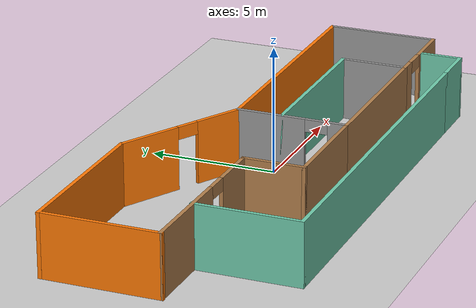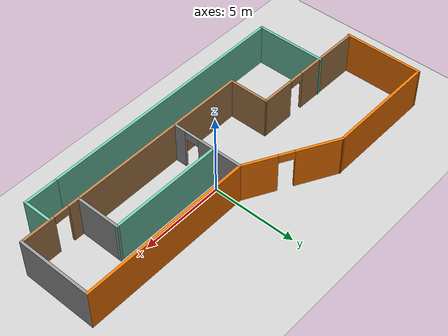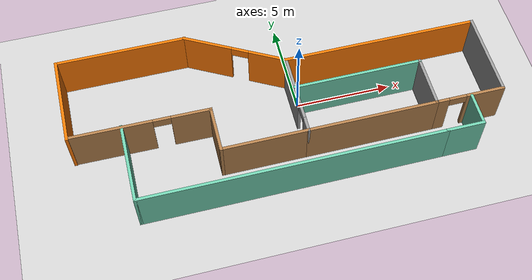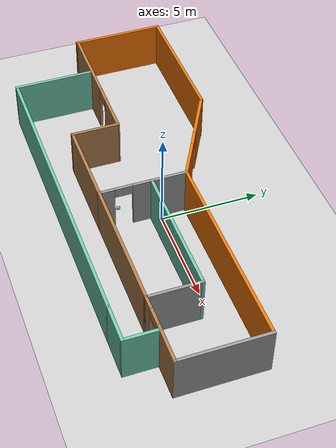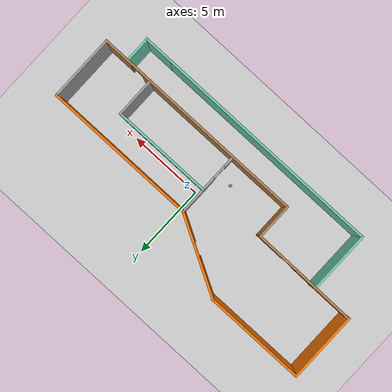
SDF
<sdf version="1.6">
 <world name="default">
  <model name="ground_plane">
   <static>1</static>
   <link name="link">
    <collision name="collision">
     <geometry><plane><normal>0 0 1</normal><size>100 100</size></plane></geometry>
     <surface>
      <contact><collide_bitmask>65535</collide_bitmask></contact>
      <friction><ode><mu>100</mu><mu2>50</mu2></ode></friction>
     </surface>
    </collision>
    <visual name="visual">
     <cast_shadows>0</cast_shadows>
     <geometry><plane><normal>0 0 1</normal><size>100 100</size></plane></geometry>
     <material>
      <script><uri>file://media/materials/scripts/gazebo.material</uri><name>Gazebo/Grey</name></script>
     </material>
    </visual>
   </link>
  </model>
  <model name="mybuilding">
   <pose>-0.9582 -0.36188 0 0 -0 0</pose>
   <link name="Wall_0">
    <collision name="Wall_0_Collision">
     <geometry><box><size>4.75 0.15 2.5</size></box></geometry>
     <pose>0 0 1.25 0 -0 0</pose>
    </collision>
    <visual name="Wall_0_Visual">
     <pose>0 0 1.25 0 -0 0</pose>
     <geometry><box><size>4.75 0.15 2.5</size></box></geometry>
     <material>
      <script><uri>file://media/materials/scripts/gazebo.material</uri><name>Gazebo/Grey</name></script>
      <ambient>0.996078 0.47451 0.0196078 1</ambient>
     </material>
     <meta><layer>0</layer></meta>
    </visual>
    <pose>-10.7747 2.01571 0 0 0 -1.5708</pose>
   </link>
   <link name="Wall_1">
    <pose>-7.22475 -0.28429 0 0 0 -0.008617</pose>
    <visual name="Wall_1_Visual_0">
     <pose>-1.48771 0 1.25 0 -0 0</pose>
     <geometry><box><size>4.27457 0.15 2.5</size></box></geometry>
     <material>
      <script><uri>file://media/materials/scripts/gazebo.material</uri><name>Gazebo/Wood</name></script>
      <ambient>1 1 1 1</ambient>
     </material>
     <meta><layer>0</layer></meta>
    </visual>
    <collision name="Wall_1_Collision_0">
     <geometry><box><size>4.27457 0.15 2.5</size></box></geometry>
     <pose>-1.48771 0 1.25 0 -0 0</pose>
    </collision>
    <visual name="Wall_1_Visual_1">
     <pose>2.58729 0 1.25 0 -0 0</pose>
     <geometry><box><size>2.07543 0.15 2.5</size></box></geometry>
     <material>
      <script><uri>file://media/materials/scripts/gazebo.material</uri><name>Gazebo/Wood</name></script>
      <ambient>1 1 1 1</ambient>
     </material>
     <meta><layer>0</layer></meta>
    </visual>
    <collision name="Wall_1_Collision_1">
     <geometry><box><size>2.07543 0.15 2.5</size></box></geometry>
     <pose>2.58729 0 1.25 0 -0 0</pose>
    </collision>
    <visual name="Wall_1_Visual_2">
     <pose>1.09957 0 2.25 0 -0 0</pose>
     <geometry><box><size>0.9 0.15 0.5</size></box></geometry>
     <material>
      <script><uri>file://media/materials/scripts/gazebo.material</uri><name>Gazebo/Wood</name></script>
      <ambient>1 1 1 1</ambient>
     </material>
     <meta><layer>0</layer></meta>
    </visual>
    <collision name="Wall_1_Collision_2">
     <geometry><box><size>0.9 0.15 0.5</size></box></geometry>
     <pose>1.09957 0 2.25 0 -0 0</pose>
    </collision>
   </link>
   <link name="Wall_10">
    <collision name="Wall_10_Collision">
     <geometry><box><size>6.75 0.15 2.5</size></box></geometry>
     <pose>0 0 1.25 0 -0 0</pose>
    </collision>
    <visual name="Wall_10_Visual">
     <pose>0 0 1.25 0 -0 0</pose>
     <geometry><box><size>6.75 0.15 2.5</size></box></geometry>
     <material>
      <script><uri>file://media/materials/scripts/gazebo.material</uri><name>Gazebo/Wood</name></script>
      <ambient>1 1 1 1</ambient>
     </material>
     <meta><layer>0</layer></meta>
    </visual>
    <pose>3.97526 -2.66488 0 0 -0 0</pose>
   </link>
   <link name="Wall_11">
    <collision name="Wall_11_Collision">
     <geometry><box><size>2.75 0.15 2.5</size></box></geometry>
     <pose>0 0 1.25 0 -0 0</pose>
    </collision>
    <visual name="Wall_11_Visual">
     <pose>0 0 1.25 0 -0 0</pose>
     <geometry><box><size>2.75 0.15 2.5</size></box></geometry>
     <material>
      <script><uri>file://media/materials/scripts/gazebo.material</uri><name>Gazebo/Grey</name></script>
      <ambient>1 1 1 1</ambient>
     </material>
     <meta><layer>0</layer></meta>
    </visual>
    <pose>7.27525 -1.36488 0 0 -0 1.5708</pose>
   </link>
   <link name="Wall_12">
    <collision name="Wall_12_Collision">
     <geometry><box><size>6.75 0.15 2.5</size></box></geometry>
     <pose>0 0 1.25 0 -0 0</pose>
    </collision>
    <visual name="Wall_12_Visual">
     <pose>0 0 1.25 0 -0 0</pose>
     <geometry><box><size>6.75 0.15 2.5</size></box></geometry>
     <material>
      <script><uri>file://media/materials/scripts/gazebo.material</uri><name>Gazebo/Grey</name></script>
      <ambient>0.435294 0.796078 0.67451 1</ambient>
     </material>
     <meta><layer>0</layer></meta>
    </visual>
    <pose>3.97526 -0.064881 0 0 -0 3.14159</pose>
   </link>
   <link name="Wall_14">
    <collision name="Wall_14_Collision">
     <geometry><box><size>10.25 0.15 2.5</size></box></geometry>
     <pose>0 0 1.25 0 -0 0</pose>
    </collision>
    <visual name="Wall_14_Visual">
     <pose>0 0 1.25 0 -0 0</pose>
     <geometry><box><size>10.25 0.15 2.5</size></box></geometry>
     <material>
      <script><uri>file://media/materials/scripts/gazebo.material</uri><name>Gazebo/Grey</name></script>
      <ambient>0.996078 0.47451 0.0196078 1</ambient>
     </material>
     <meta><layer>0</layer></meta>
    </visual>
    <pose>5.72526 1.68512 0 0 -0 0</pose>
   </link>
   <link name="Wall_15">
    <collision name="Wall_15_Collision">
     <geometry><box><size>4.5 0.15 2.5</size></box></geometry>
     <pose>0 0 1.25 0 -0 0</pose>
    </collision>
    <visual name="Wall_15_Visual">
     <pose>0 0 1.25 0 -0 0</pose>
     <geometry><box><size>4.5 0.15 2.5</size></box></geometry>
     <material>
      <script><uri>file://media/materials/scripts/gazebo.material</uri><name>Gazebo/Grey</name></script>
      <ambient>1 1 1 1</ambient>
     </material>
     <meta><layer>0</layer></meta>
    </visual>
    <pose>10.7753 -0.489881 0 0 0 -1.5708</pose>
   </link>
   <link name="Wall_16">
    <pose>9.02525 -2.66488 0 0 -0 3.14159</pose>
    <visual name="Wall_16_Visual_0">
     <pose>-0.812242 0 1.25 0 -0 0</pose>
     <geometry><box><size>2.02552 0.15 2.5</size></box></geometry>
     <material>
      <script><uri>file://media/materials/scripts/gazebo.material</uri><name>Gazebo/Wood</name></script>
      <ambient>1 1 1 1</ambient>
     </material>
     <meta><layer>0</layer></meta>
    </visual>
    <collision name="Wall_16_Collision_0">
     <geometry><box><size>2.02552 0.15 2.5</size></box></geometry>
     <pose>-0.812242 0 1.25 0 -0 0</pose>
    </collision>
    <visual name="Wall_16_Visual_1">
     <pose>1.46276 0 1.25 0 -0 0</pose>
     <geometry><box><size>0.724483 0.15 2.5</size></box></geometry>
     <material>
      <script><uri>file://media/materials/scripts/gazebo.material</uri><name>Gazebo/Wood</name></script>
      <ambient>1 1 1 1</ambient>
     </material>
     <meta><layer>0</layer></meta>
    </visual>
    <collision name="Wall_16_Collision_1">
     <geometry><box><size>0.724483 0.15 2.5</size></box></geometry>
     <pose>1.46276 0 1.25 0 -0 0</pose>
    </collision>
    <visual name="Wall_16_Visual_2">
     <pose>0.650517 0 2.25 0 -0 0</pose>
     <geometry><box><size>0.9 0.15 0.5</size></box></geometry>
     <material>
      <script><uri>file://media/materials/scripts/gazebo.material</uri><name>Gazebo/Wood</name></script>
      <ambient>1 1 1 1</ambient>
     </material>
     <meta><layer>0</layer></meta>
    </visual>
    <collision name="Wall_16_Collision_2">
     <geometry><box><size>0.9 0.15 0.5</size></box></geometry>
     <pose>0.650517 0 2.25 0 -0 0</pose>
    </collision>
   </link>
   <link name="Wall_18">
    <collision name="Wall_18_Collision">
     <geometry><box><size>4.25 0.15 2.5</size></box></geometry>
     <pose>0 0 1.25 0 -0 0</pose>
    </collision>
    <visual name="Wall_18_Visual">
     <pose>0 0 1.25 0 -0 0</pose>
     <geometry><box><size>4.25 0.15 2.5</size></box></geometry>
     <material>
      <script><uri>file://media/materials/scripts/gazebo.material</uri><name>Gazebo/Grey</name></script>
      <ambient>0.435294 0.796078 0.67451 1</ambient>
     </material>
     <meta><layer>0</layer></meta>
    </visual>
    <pose>-8.11339 -2.29223 0 0 0 -1.5708</pose>
   </link>
   <link name="Wall_19">
    <collision name="Wall_19_Collision">
     <geometry><box><size>15.5 0.15 2.5</size></box></geometry>
     <pose>0 0 1.25 0 -0 0</pose>
    </collision>
    <visual name="Wall_19_Visual">
     <pose>0 0 1.25 0 -0 0</pose>
     <geometry><box><size>15.5 0.15 2.5</size></box></geometry>
     <material>
      <script><uri>file://media/materials/scripts/gazebo.material</uri><name>Gazebo/Grey</name></script>
      <ambient>0.435294 0.796078 0.67451 1</ambient>
     </material>
     <meta><layer>0</layer></meta>
    </visual>
    <pose>-0.438395 -4.34223 0 0 -0 0</pose>
   </link>
   <link name="Wall_2">
    <collision name="Wall_2_Collision">
     <geometry><box><size>2.5 0.15 2.5</size></box></geometry>
     <pose>0 0 1.25 0 -0 0</pose>
    </collision>
    <visual name="Wall_2_Visual">
     <pose>0 0 1.25 0 -0 0</pose>
     <geometry><box><size>2.5 0.15 2.5</size></box></geometry>
     <material>
      <script><uri>file://media/materials/scripts/gazebo.material</uri><name>Gazebo/Wood</name></script>
      <ambient>1 1 1 1</ambient>
     </material>
     <meta><layer>0</layer></meta>
    </visual>
    <pose>-3.67474 -1.48988 0 0 0 -1.5708</pose>
   </link>
   <link name="Wall_20">
    <collision name="Wall_20_Collision">
     <geometry><box><size>2 0.15 2.5</size></box></geometry>
     <pose>0 0 1.25 0 -0 0</pose>
    </collision>
    <visual name="Wall_20_Visual">
     <pose>0 0 1.25 0 -0 0</pose>
     <geometry><box><size>2 0.15 2.5</size></box></geometry>
     <material>
      <script><uri>file://media/materials/scripts/gazebo.material</uri><name>Gazebo/Grey</name></script>
      <ambient>0.435294 0.796078 0.67451 1</ambient>
     </material>
     <meta><layer>0</layer></meta>
    </visual>
    <pose>8.1616 -4.34223 0 0 -0 0</pose>
   </link>
   <link name="Wall_21">
    <collision name="Wall_21_Collision">
     <geometry><box><size>1.75 0.15 2.5</size></box></geometry>
     <pose>0 0 1.25 0 -0 0</pose>
    </collision>
    <visual name="Wall_21_Visual">
     <pose>0 0 1.25 0 -0 0</pose>
     <geometry><box><size>1.75 0.15 2.5</size></box></geometry>
     <material>
      <script><uri>file://media/materials/scripts/gazebo.material</uri><name>Gazebo/Grey</name></script>
      <ambient>0.435294 0.796078 0.67451 1</ambient>
     </material>
     <meta><layer>0</layer></meta>
    </visual>
    <pose>9.08661 -3.54223 0 0 -0 1.5708</pose>
   </link>
   <link name="Wall_3">
    <collision name="Wall_3_Collision">
     <geometry><box><size>4.5 0.15 2.5</size></box></geometry>
     <pose>0 0 1.25 0 -0 0</pose>
    </collision>
    <visual name="Wall_3_Visual">
     <pose>0 0 1.25 0 -0 0</pose>
     <geometry><box><size>4.5 0.15 2.5</size></box></geometry>
     <material>
      <script><uri>file://media/materials/scripts/gazebo.material</uri><name>Gazebo/Wood</name></script>
      <ambient>1 1 1 1</ambient>
     </material>
     <meta><layer>0</layer></meta>
    </visual>
    <pose>-1.49975 -2.66488 0 0 -0 0</pose>
   </link>
   <link name="Wall_4">
    <pose>0.675256 -0.489881 0 0 -0 1.5708</pose>
    <visual name="Wall_4_Visual_0">
     <pose>-1.83798 0 1.25 0 -0 0</pose>
     <geometry><box><size>0.824037 0.15 2.5</size></box></geometry>
     <material>
      <script><uri>file://media/materials/scripts/gazebo.material</uri><name>Gazebo/Grey</name></script>
      <ambient>1 1 1 1</ambient>
     </material>
     <meta><layer>0</layer></meta>
    </visual>
    <collision name="Wall_4_Collision_0">
     <geometry><box><size>0.824037 0.15 2.5</size></box></geometry>
     <pose>-1.83798 0 1.25 0 -0 0</pose>
    </collision>
    <visual name="Wall_4_Visual_1">
     <pose>0.862019 0 1.25 0 -0 0</pose>
     <geometry><box><size>2.77596 0.15 2.5</size></box></geometry>
     <material>
      <script><uri>file://media/materials/scripts/gazebo.material</uri><name>Gazebo/Grey</name></script>
      <ambient>1 1 1 1</ambient>
     </material>
     <meta><layer>0</layer></meta>
    </visual>
    <collision name="Wall_4_Collision_1">
     <geometry><box><size>2.77596 0.15 2.5</size></box></geometry>
     <pose>0.862019 0 1.25 0 -0 0</pose>
    </collision>
    <visual name="Wall_4_Visual_2">
     <pose>-0.975963 0 2.25 0 -0 0</pose>
     <geometry><box><size>0.9 0.15 0.5</size></box></geometry>
     <material>
      <script><uri>file://media/materials/scripts/gazebo.material</uri><name>Gazebo/Grey</name></script>
      <ambient>1 1 1 1</ambient>
     </material>
     <meta><layer>0</layer></meta>
    </visual>
    <collision name="Wall_4_Collision_2">
     <geometry><box><size>0.9 0.15 0.5</size></box></geometry>
     <pose>-0.975963 0 2.25 0 -0 0</pose>
    </collision>
   </link>
   <link name="Wall_5">
    <pose>-1.71902 3.00026 0 0 -0 2.6393</pose>
    <visual name="Wall_5_Visual_0">
     <pose>-1.76931 0 1.25 0 -0 0</pose>
     <geometry><box><size>2.07477 0.15 2.5</size></box></geometry>
     <material>
      <script><uri>file://media/materials/scripts/gazebo.material</uri><name>Gazebo/Grey</name></script>
      <ambient>0.996078 0.47451 0.0196078 1</ambient>
     </material>
     <meta><layer>0</layer></meta>
    </visual>
    <collision name="Wall_5_Collision_0">
     <geometry><box><size>2.07477 0.15 2.5</size></box></geometry>
     <pose>-1.76931 0 1.25 0 -0 0</pose>
    </collision>
    <visual name="Wall_5_Visual_1">
     <pose>1.48739 0 1.25 0 -0 0</pose>
     <geometry><box><size>2.63861 0.15 2.5</size></box></geometry>
     <material>
      <script><uri>file://media/materials/scripts/gazebo.material</uri><name>Gazebo/Grey</name></script>
      <ambient>0.996078 0.47451 0.0196078 1</ambient>
     </material>
     <meta><layer>0</layer></meta>
    </visual>
    <collision name="Wall_5_Collision_1">
     <geometry><box><size>2.63861 0.15 2.5</size></box></geometry>
     <pose>1.48739 0 1.25 0 -0 0</pose>
    </collision>
    <visual name="Wall_5_Visual_2">
     <pose>-0.281919 0 2.25 0 -0 0</pose>
     <geometry><box><size>0.9 0.15 0.5</size></box></geometry>
     <material>
      <script><uri>file://media/materials/scripts/gazebo.material</uri><name>Gazebo/Grey</name></script>
      <ambient>0.996078 0.47451 0.0196078 1</ambient>
     </material>
     <meta><layer>0</layer></meta>
    </visual>
    <collision name="Wall_5_Collision_2">
     <geometry><box><size>0.9 0.15 0.5</size></box></geometry>
     <pose>-0.281919 0 2.25 0 -0 0</pose>
    </collision>
   </link>
   <link name="Wall_8">
    <collision name="Wall_8_Collision">
     <geometry><box><size>6.81145 0.15 2.5</size></box></geometry>
     <pose>0 0 1.25 0 -0 0</pose>
    </collision>
    <visual name="Wall_8_Visual">
     <pose>0 0 1.25 0 -0 0</pose>
     <geometry><box><size>6.81145 0.15 2.5</size></box></geometry>
     <material>
      <script><uri>file://media/materials/scripts/gazebo.material</uri><name>Gazebo/Grey</name></script>
      <ambient>0.996078 0.47451 0.0196078 1</ambient>
     </material>
     <meta><layer>0</layer></meta>
    </visual>
    <pose>-7.44402 4.31555 0 0 0 -4.8e-05</pose>
   </link>
   <static>1</static>
  </model>
  <model name="my_ball">
   <link name="link_0">
    <inertial>
     <mass>1</mass>
     <inertia><ixx>0.1</ixx><ixy>0</ixy><ixz>0</ixz><iyy>0.1</iyy><iyz>0</iyz><izz>0.1</izz></inertia>
    </inertial>
    <visual name="visual">
     <geometry><sphere><radius>0.1</radius></sphere></geometry>
     <material>
      <lighting>1</lighting>
      <script><uri>file://media/materials/scripts/gazebo.material</uri><name>Gazebo/Grey</name></script>
      <shader type="pixel"><normal_map>__default__</normal_map></shader>
      <ambient>1 1 1 1</ambient>
      <diffuse>1 1 1 1</diffuse>
      <specular>1 1 1 1</specular>
      <emissive>1 1 1 1</emissive>
     </material>
    </visual>
    <collision name="collision">
     <geometry><sphere><radius>0.1</radius></sphere></geometry>
     <surface>
      <friction>
       <ode><mu>1</mu><mu2>1</mu2><fdir1>0 0 0</fdir1><slip1>0</slip1><slip2>0</slip2></ode>
       <torsional>
        <coefficient>1</coefficient>
        <patch_radius>0</patch_radius>
        <surface_radius>0</surface_radius>
        <use_patch_radius>1</use_patch_radius>
        <ode><slip>0</slip></ode>
       </torsional>
      </friction>
      <bounce><restitution_coefficient>0</restitution_coefficient><threshold>1e+06</threshold></bounce>
      <contact>
       <collide_without_contact>0</collide_without_contact>
       <collide_without_contact_bitmask>1</collide_without_contact_bitmask>
       <collide_bitmask>1</collide_bitmask>
       <ode>
        <soft_cfm>0</soft_cfm>
        <soft_erp>0.2</soft_erp>
        <kp>1e+13</kp>
        <kd>1</kd>
        <max_vel>0.01</max_vel>
        <min_depth>0</min_depth>
       </ode>
       <bullet>
        <split_impulse>1</split_impulse>
        <split_impulse_penetration_threshold>-0.01</split_impulse_penetration_threshold>
        <soft_cfm>0</soft_cfm>
        <soft_erp>0.2</soft_erp>
        <kp>1e+13</kp>
        <kd>1</kd>
       </bullet>
      </contact>
     </surface>
    </collision>
   </link>
   <static>0</static>
   <pose>-1.305 -1.79231 0.1 0 -0 0</pose>
  </model>
 </world>
</sdf>
